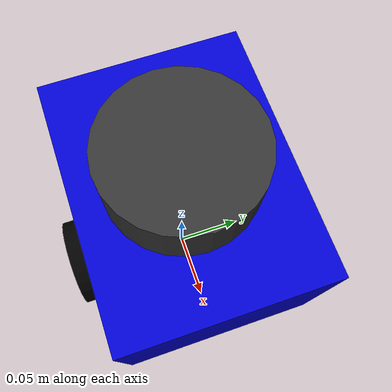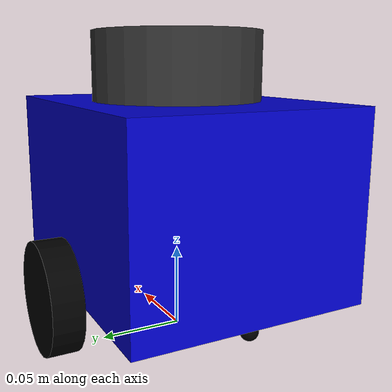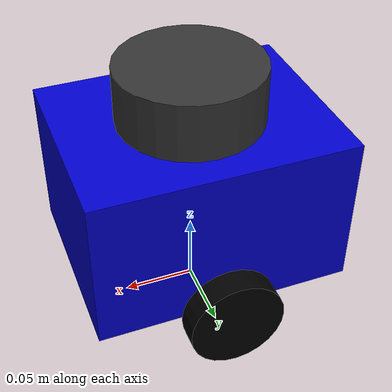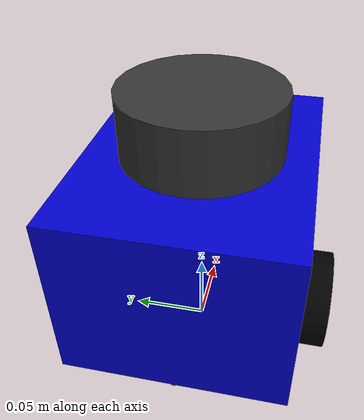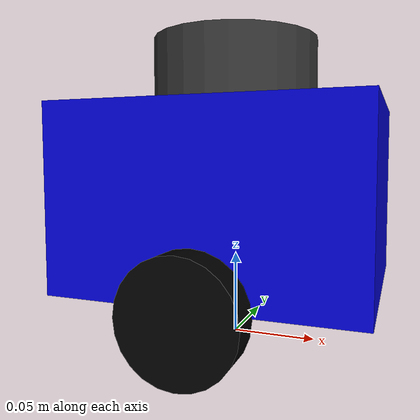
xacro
<?xml version="1.0"?>
<robot name="my_robot" xmlns:xacro="http://www.ros.org/wiki/xacro">

  <!-- include 的顺序很重要：property 和 macro 必须先定义后使用，
       所以参数、材质、macro 文件排在前面，部件文件排在后面 -->
  <xacro:include filename="my_robot/properties.xacro"/>
  <xacro:include filename="my_robot/materials.xacro"/>
  <xacro:include filename="my_robot/inertia_macros.xacro"/>
  <xacro:include filename="my_robot/macros.xacro"/>
  <xacro:include filename="my_robot/base.xacro"/>
  <xacro:include filename="my_robot/sensors.xacro"/>
  <xacro:include filename="my_robot/wheels.xacro"/>
  <xacro:include filename="my_robot/gazebo_materials.xacro"/>

</robot>

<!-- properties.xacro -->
<!--
  文件说明：my_robot 的全部尺寸/质量参数（xacro property）。
  被 my_robot.urdf.xacro 最先 include，其余子文件都用
  ${名字} 引用这里的数值。想改机器人尺寸只需改这一个文件。
  数值参考 TurtleBot3 Burger 的真实参数，单位：米、千克。
-->
<robot xmlns:xacro="http://www.ros.org/wiki/xacro">

  <!-- 底盘（长方体）的外形尺寸和质量 -->
  <xacro:property name="base_length" value="0.178"/>
  <xacro:property name="base_width" value="0.138"/>
  <xacro:property name="base_height" value="0.109"/>
  <xacro:property name="base_mass" value="0.826"/>

  <!-- 驱动轮：ygap 是轮心到底盘中线的横向距离，
       separation 是两轮间距（差速运动学会用到） -->
  <xacro:property name="wheel_radius" value="0.033"/>
  <xacro:property name="wheel_width" value="0.018"/>
  <xacro:property name="wheel_mass" value="0.0285"/>
  <xacro:property name="wheel_ygap" value="0.080"/>
  <xacro:property name="wheel_separation" value="0.160"/>

  <!-- 后万向轮（小球）：x 为负表示装在底盘后方，
       z 为负表示低于底盘底面，用于支撑车身 -->
  <xacro:property name="caster_radius" value="0.005"/>
  <xacro:property name="caster_mass" value="0.005"/>
  <xacro:property name="caster_x" value="-0.081"/>
  <xacro:property name="caster_z" value="-0.004"/>

  <!-- 激光雷达（LiDAR）：scan_z 用表达式计算——
       安装高度 = 底盘顶面 + 雷达自身高度的一半 -->
  <xacro:property name="scan_radius" value="0.050"/>
  <xacro:property name="scan_height" value="0.040"/>
  <xacro:property name="scan_mass" value="0.114"/>
  <xacro:property name="scan_z" value="${base_height + scan_height / 2.0}"/>

</robot>

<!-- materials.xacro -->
<!--
  文件说明：my_robot 的颜色材质定义（RViz 中显示用）。
  先用 property 定义 rgba 颜色值，再声明 material 供各
  link 的 visual 按名字引用。Gazebo 不认这里的 material，
  仿真颜色见 gazebo_materials.xacro（两处共用同一批颜色值）。
-->
<robot xmlns:xacro="http://www.ros.org/wiki/xacro">

  <!-- rgba 四个分量取值 0~1，最后一个是不透明度 -->
  <xacro:property name="color_blue" value="0.0 0.0 0.8 1.0"/>
  <xacro:property name="color_black" value="0.0 0.0 0.0 1.0"/>
  <xacro:property name="color_grey" value="0.5 0.5 0.5 1.0"/>
  <xacro:property name="color_dark_grey" value="0.2 0.2 0.2 1.0"/>

  <material name="blue">
    <color rgba="${color_blue}"/>
  </material>

  <material name="black">
    <color rgba="${color_black}"/>
  </material>

  <material name="grey">
    <color rgba="${color_grey}"/>
  </material>

  <material name="dark_grey">
    <color rgba="${color_dark_grey}"/>
  </material>

</robot>

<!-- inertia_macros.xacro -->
<robot xmlns:xacro="http://www.ros.org/wiki/xacro">

  <!-- 实心长方体：ixx = m/12*(y^2+z^2)，其余轴同理 -->
  <xacro:macro name="inertia_box" params="mass x y z">
    <inertia
      ixx="${mass / 12.0 * (y*y + z*z)}"
      ixy="0" ixz="0"
      iyy="${mass / 12.0 * (x*x + z*z)}"
      iyz="0"
      izz="${mass / 12.0 * (x*x + y*y)}"/>
  </xacro:macro>

  <!-- Cylinder whose axis is the link y-axis, used by side-mounted wheels. -->
  <xacro:macro name="inertia_cylinder_y" params="mass radius length">
    <inertia
      ixx="${mass / 12.0 * (3.0*radius*radius + length*length)}"
      ixy="0" ixz="0"
      iyy="${mass / 2.0 * radius*radius}"
      iyz="0"
      izz="${mass / 12.0 * (3.0*radius*radius + length*length)}"/>
  </xacro:macro>

  <!-- Cylinder whose axis is the link z-axis, used by the lidar puck. -->
  <xacro:macro name="inertia_cylinder_z" params="mass radius length">
    <inertia
      ixx="${mass / 12.0 * (3.0*radius*radius + length*length)}"
      ixy="0" ixz="0"
      iyy="${mass / 12.0 * (3.0*radius*radius + length*length)}"
      iyz="0"
      izz="${mass / 2.0 * radius*radius}"/>
  </xacro:macro>

</robot>

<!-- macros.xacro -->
<!--
  文件说明：车轮部件的 xacro macro 定义（只定义、不实例化）。
  演示概念：macro 参数化复用——同一个模板通过不同参数
  生成左轮/右轮/万向轮，实际调用在 wheels.xacro 中。
  ${prefix} 拼进 link/joint 名字，y_reflect 取 1/-1 做左右镜像。
-->
<robot xmlns:xacro="http://www.ros.org/wiki/xacro">

  <!-- 驱动轮 macro：展开成一个轮子 link + continuous joint。
       prefix 决定命名（left/right），y_reflect 决定装在哪一侧 -->
  <xacro:macro name="drive_wheel" params="prefix y_reflect">
    <link name="${prefix}_wheel_link">
      <inertial>
        <origin xyz="0 0 0" rpy="0 0 0"/>
        <mass value="${wheel_mass}"/>
        <xacro:inertia_cylinder_y
          mass="${wheel_mass}"
          radius="${wheel_radius}"
          length="${wheel_width}"/>
      </inertial>
      <!-- roll 转 90°（${pi/2}）让圆柱侧躺，轴向变为 y 轴 -->
      <visual>
        <origin xyz="0 0 0" rpy="${pi/2} 0 0"/>
        <geometry>
          <cylinder radius="${wheel_radius}" length="${wheel_width}"/>
        </geometry>
        <material name="black"/>
      </visual>
      <collision>
        <origin xyz="0 0 0" rpy="${pi/2} 0 0"/>
        <geometry>
          <cylinder radius="${wheel_radius}" length="${wheel_width}"/>
        </geometry>
      </collision>
    </link>

    <!-- y_reflect * wheel_ygap：+1 得左轮、-1 得右轮，
         一个 macro 就覆盖了左右两侧 -->
    <joint name="${prefix}_wheel_joint" type="continuous">
      <parent link="base_link"/>
      <child link="${prefix}_wheel_link"/>
      <origin xyz="0 ${y_reflect * wheel_ygap} 0" rpy="0 0 0"/>
      <axis xyz="0 1 0"/>
    </joint>
  </xacro:macro>

  <!-- 万向轮 macro：用小球近似，fixed joint 固定在底盘下方，
       实际的"万向"效果靠仿真中把摩擦系数调低来实现 -->
  <xacro:macro name="caster_wheel" params="prefix x_pos z_pos">
    <link name="${prefix}_caster_link">
      <inertial>
        <origin xyz="0 0 0" rpy="0 0 0"/>
        <mass value="${caster_mass}"/>
        <!-- 万向轮很小很轻，直接给一个极小的惯性值即可 -->
        <inertia
          ixx="1e-5" ixy="0" ixz="0"
          iyy="1e-5" iyz="0"
          izz="1e-5"/>
      </inertial>
      <visual>
        <origin xyz="0 0 0" rpy="0 0 0"/>
        <geometry>
          <sphere radius="${caster_radius}"/>
        </geometry>
        <material name="black"/>
      </visual>
      <collision>
        <origin xyz="0 0 0" rpy="0 0 0"/>
        <geometry>
          <sphere radius="${caster_radius}"/>
        </geometry>
      </collision>
    </link>

    <joint name="${prefix}_caster_joint" type="fixed">
      <parent link="base_link"/>
      <child link="${prefix}_caster_link"/>
      <origin xyz="${x_pos} 0 ${z_pos}" rpy="0 0 0"/>
    </joint>
  </xacro:macro>

</robot>

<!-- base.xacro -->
<!--
  文件说明：my_robot 的底盘部分（base_footprint + base_link）。
  所有尺寸来自 properties.xacro 的 property，
  惯性矩阵通过 inertia_macros.xacro 的 macro 展开。
  由 my_robot.urdf.xacro include，不能单独用 xacro 展开。
-->
<robot xmlns:xacro="http://www.ros.org/wiki/xacro">

  <!-- base_footprint：无几何体的虚拟 link，代表机器人在
       地面上的投影原点（REP-120 导航惯例） -->
  <link name="base_footprint"/>

  <!-- 底盘 link：inertial + visual + collision 三件套。
       visual 给 RViz 看，collision 给物理引擎算碰撞，
       inertial 给物理引擎算动力学 -->
  <link name="base_link">
    <inertial>
      <origin xyz="0 0 ${base_height / 2.0}" rpy="0 0 0"/>
      <mass value="${base_mass}"/>
      <xacro:inertia_box
        mass="${base_mass}"
        x="${base_length}"
        y="${base_width}"
        z="${base_height}"/>
    </inertial>
    <visual>
      <origin xyz="0 0 ${base_height / 2.0}" rpy="0 0 0"/>
      <geometry>
        <box size="${base_length} ${base_width} ${base_height}"/>
      </geometry>
      <material name="blue"/>
    </visual>
    <collision>
      <origin xyz="0 0 ${base_height / 2.0}" rpy="0 0 0"/>
      <geometry>
        <box size="${base_length} ${base_width} ${base_height}"/>
      </geometry>
    </collision>
  </link>

  <!-- 底盘抬高一个轮子半径，使轮子底部正好接触地面 -->
  <joint name="base_joint" type="fixed">
    <parent link="base_footprint"/>
    <child link="base_link"/>
    <origin xyz="0 0 ${wheel_radius}" rpy="0 0 0"/>
  </joint>

</robot>

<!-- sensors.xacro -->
<!--
  文件说明：my_robot 的传感器部分——顶部激光雷达（LiDAR）。
  link 命名为 base_scan 遵循 TurtleBot3 惯例，
  之后 SLAM/导航发布的激光数据 frame_id 就是它。
  由 my_robot.urdf.xacro include。
-->
<robot xmlns:xacro="http://www.ros.org/wiki/xacro">

  <!-- 雷达本体：小圆柱，惯性用 z 轴圆柱 macro（竖放） -->
  <link name="base_scan">
    <inertial>
      <origin xyz="0 0 0" rpy="0 0 0"/>
      <mass value="${scan_mass}"/>
      <xacro:inertia_cylinder_z
        mass="${scan_mass}"
        radius="${scan_radius}"
        length="${scan_height}"/>
    </inertial>
    <visual>
      <origin xyz="0 0 0" rpy="0 0 0"/>
      <geometry>
        <cylinder radius="${scan_radius}" length="${scan_height}"/>
      </geometry>
      <material name="dark_grey"/>
    </visual>
    <collision>
      <origin xyz="0 0 0" rpy="0 0 0"/>
      <geometry>
        <cylinder radius="${scan_radius}" length="${scan_height}"/>
      </geometry>
    </collision>
  </link>

  <!-- 雷达固定在底盘顶面正中央（scan_z 在 properties 中
       用表达式算出：底盘高度 + 雷达半高） -->
  <joint name="scan_joint" type="fixed">
    <parent link="base_link"/>
    <child link="base_scan"/>
    <origin xyz="0 0 ${scan_z}" rpy="0 0 0"/>
  </joint>

</robot>
